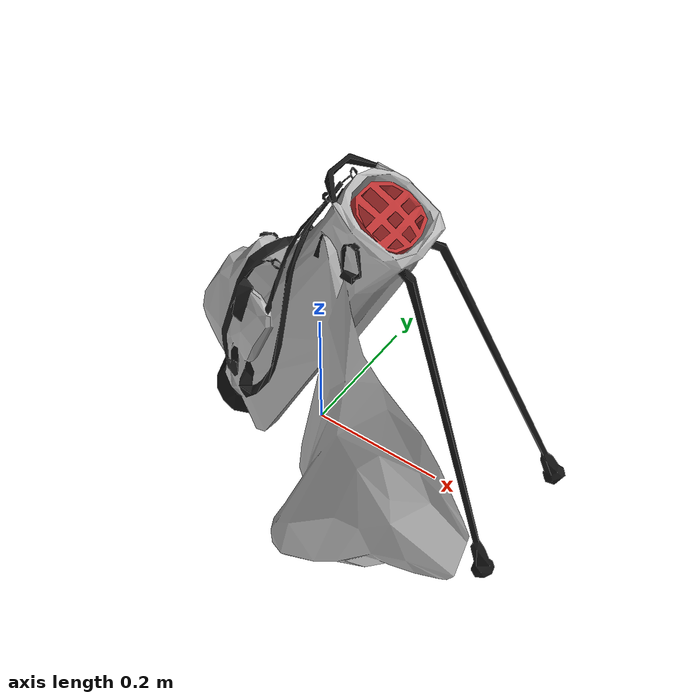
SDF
<?xml version='1.0'?>
<sdf version="1.5">

  <model name="travel_bag">
    <static>false</static>
    <link name="link">

      <inertial>
        <mass>5.0</mass>
        <inertia>
          <ixx>0.1</ixx>       <!-- for a box: ixx = 0.083 * mass * (y*y + z*z) -->
          <ixy>0.0</ixy>       <!-- for a box: ixy = 0 -->
          <ixz>0.0</ixz>       <!-- for a box: ixz = 0 -->
          <iyy>0.1</iyy>       <!-- for a box: iyy = 0.083 * mass * (x*x + z*z) -->
          <iyz>0.0</iyz>       <!-- for a box: iyz = 0 -->
          <izz>0.1</izz>      <!-- for a box: izz = 0.083 * mass * (x*x + y*y) -->
        </inertia>
      </inertial>

      <collision name="collision">
        <geometry>
          <mesh>
            <uri>model://travel_bag/travel_bag.dae</uri>
          </mesh>
        </geometry>
      </collision>

      <visual name="visual">
        <geometry>
          <mesh>
            <uri>model://travel_bag/travel_bag.dae</uri>
          </mesh>
        </geometry>
      </visual>

    </link>
  </model>

</sdf>
